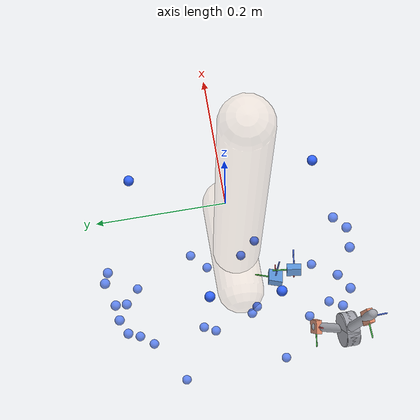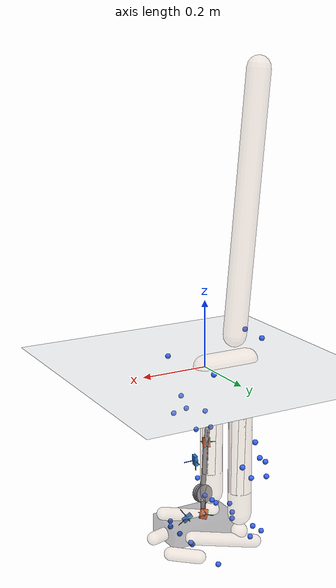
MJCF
<mujoco model="AB15">
  <compiler angle="radian" autolimits="true"/>
  <option timestep="0.005" gravity="0 0 -9.81"><flag contact="disable"/></option>
  <visual><global offwidth="1600" offheight="1200"/>
    <headlight ambient="0.55 0.55 0.55" diffuse="0.6 0.6 0.6"/></visual>
  <default><joint limited="false" damping="0"/><geom contype="0" conaffinity="0"/></default>
  <asset>
    <texture name="grid" type="2d" builtin="checker" rgb1="0.75 0.77 0.8" rgb2="0.85 0.87 0.9" width="512" height="512"/>
    <material name="grid" texture="grid" texrepeat="2 2" texuniform="true"/>
    <material name="skin" rgba="0.85 0.72 0.62 0.28"/>
  </asset>
  <worldbody>
    <light pos="0 0 4" dir="0 0 -1"/>
    <geom name="floor" type="plane" size="0 0 0.05" material="grid"/>
    <body name="pelvis" pos="0 0 0" quat="1 0 0 0">
      <joint name="pelvis_tx" type="slide" axis="1 0 0"/>
      <joint name="pelvis_ty" type="slide" axis="0 0 1"/>
      <joint name="pelvis_tz" type="slide" axis="0 -1 0"/>
      <joint name="pelvis_tilt" type="hinge" axis="0 -1 0"/>
      <joint name="pelvis_list" type="hinge" axis="1 0 0"/>
      <joint name="pelvis_rotation" type="hinge" axis="0 0 1"/>
      <inertial pos="-0.070405409 0 0" mass="15.1838" diaginertia="0.15183756 0.15183756 0.15183756"/>
      <geom type="capsule" fromto="0 0 0 -0.14081082 0 0" size="0.035" material="skin" mass="0"/>
      <site name="m_R_ASIS" pos="0.045681783 -0.14368094 -0.00050951685" size="0.008" rgba="0.2 0.4 1 1" group="2"/>
      <site name="m_L_ASIS" pos="0.051939939 0.14032776 0.02622468" size="0.008" rgba="0.2 0.4 1 1" group="2"/>
      <site name="m_L_PSIS" pos="-0.16270933 0.050413967 0.075718955" size="0.008" rgba="0.2 0.4 1 1" group="2"/>
      <site name="m_R_PSIS" pos="-0.17168138 -0.056377954 0.074213581" size="0.008" rgba="0.2 0.4 1 1" group="2"/>
      <body name="femur_r" pos="-0.070405409 -0.083152074 -0.065824576" quat="1 0 0 0">
        <joint name="hip_flexion_r" type="hinge" axis="0 -1 0"/>
        <joint name="hip_adduction_r" type="hinge" axis="1 0 0"/>
        <joint name="hip_rotation_r" type="hinge" axis="0 0 1"/>
        <inertial pos="0 0 -0.15482401" mass="11.992" diaginertia="0.11992034 0.11992034 0.11992034"/>
        <geom type="capsule" fromto="0 0 0 0 0 -0.30964801" size="0.035" material="skin" mass="0"/>
        <site name="m_R_Thigh_Upper" pos="0.045856362 -0.10865841 -0.088879065" size="0.008" rgba="0.2 0.4 1 1" group="2"/>
        <site name="m_R_Thigh_Front" pos="0.079731243 -0.094871997 -0.13562143" size="0.008" rgba="0.2 0.4 1 1" group="2"/>
        <site name="m_R_Thigh_Rear" pos="0.025570245 -0.11221768 -0.13552686" size="0.008" rgba="0.2 0.4 1 1" group="2"/>
        <site name="m_R_Knee_Lat" pos="0.001817986 -0.08337012 -0.36623417" size="0.008" rgba="0.2 0.4 1 1" group="2"/>
        <site name="m_R_Knee_Med" pos="0.011138818 0.048097652 -0.39595541" size="0.008" rgba="0.2 0.4 1 1" group="2"/>
        <body name="tibia_r" pos="0 0 0" quat="1 0 0 0">
<geom name="gt_shank_axis_x" type="capsule" size="0.0012" fromto="0.04220 -0.02730 -0.27550 0.03969 -0.02742 -0.31041" rgba="1 0.1 0.1 1" contype="0" conaffinity="0" mass="0"/>
<geom name="gt_shank_axis_y" type="capsule" size="0.0012" fromto="0.04220 -0.02730 -0.27550 0.04743 0.00730 -0.27599" rgba="0.1 0.8 0.1 1" contype="0" conaffinity="0" mass="0"/>
<geom name="gt_shank_axis_z" type="capsule" size="0.0012" fromto="0.04220 -0.02730 -0.27550 0.07672 -0.03255 -0.27797" rgba="0.1 0.3 1 1" contype="0" conaffinity="0" mass="0"/>
<geom name="exo_shank_axis_x" type="capsule" size="0.0012" fromto="-0.05920 -0.13379 -0.27451 -0.06338 -0.14305 -0.24102" rgba="1 0.1 0.1 1" contype="0" conaffinity="0" mass="0"/>
<geom name="exo_shank_axis_y" type="capsule" size="0.0012" fromto="-0.05920 -0.13379 -0.27451 -0.09382 -0.13568 -0.27935" rgba="0.1 0.8 0.1 1" contype="0" conaffinity="0" mass="0"/>
<geom name="exo_shank_axis_z" type="capsule" size="0.0012" fromto="-0.05920 -0.13379 -0.27451 -0.05612 -0.16749 -0.28345" rgba="0.1 0.3 1 1" contype="0" conaffinity="0" mass="0"/>
<geom name="encoder_shank" type="cylinder" size="0.03 0.012" fromto="-0.03236 -0.12546 -0.44203 -0.03484 -0.10194 -0.43797" rgba="0.55 0.55 0.58 1" contype="0" conaffinity="0" mass="0"/>
<geom name="strut_shank" type="capsule" size="0.008" fromto="-0.03360 -0.11370 -0.44000 -0.06560 -0.13881 -0.23314" rgba="0.55 0.55 0.58 1" contype="0" conaffinity="0" mass="0"/>
          <joint name="knee_r_translation1" type="slide" axis="1 0 0"/>
          <joint name="knee_r_translation2" type="slide" axis="0 0 1"/>
          <joint name="knee_angle_r" type="hinge" axis="0 -1 0"/>
          <inertial pos="0 0 -0.19105773" mass="4.77998" diaginertia="0.047799757 0.047799757 0.047799757"/>
          <geom type="capsule" fromto="0 0 0 0 0 -0.38211546" size="0.035" material="skin" mass="0"/>
          <site name="m_R_Shank_Upper" pos="-0.037257783 -0.10269807 -0.15302491" size="0.008" rgba="0.2 0.4 1 1" group="2"/>
          <site name="m_R_Shank_Front" pos="0.0018492339 -0.091024596 -0.20349314" size="0.008" rgba="0.2 0.4 1 1" group="2"/>
          <site name="m_R_Shank_Rear" pos="-0.050458984 -0.090268938 -0.20559178" size="0.008" rgba="0.2 0.4 1 1" group="2"/>
          <site name="m_R_Ankle_Lat" pos="-0.0056238593 -0.049797174 -0.41507894" size="0.008" rgba="0.2 0.4 1 1" group="2"/>
          <site name="m_R_Ankle_Med" pos="0.019411138 0.038144566 -0.388534" size="0.008" rgba="0.2 0.4 1 1" group="2"/>
          <site name="gt_shank_imu" type="box" size="0.016 0.012 0.005" pos="0.0422 -0.0273 -0.2755" quat="0.67940685 0.050024138 0.72989439 -0.056196962" rgba="0.16 0.47 0.84 1" group="1"/>
          <site name="exo_shank_imu" type="box" size="0.016 0.012 0.005" pos="-0.059204 -0.133791 -0.274511" quat="-0.37795144 -0.54539789 0.57460608 -0.47908424" rgba="0.92 0.41 0.20 1" group="1"/>
          <body name="talus_r" pos="0 0 -0.44003655" quat="1 0 0 0">
            <joint name="ankle_angle_r" type="hinge" axis="-0.10501355 -0.97912632 -0.17402245"/>
            <inertial pos="0 0 0" mass="0.128927" diaginertia="0.0012892719 0.0012892719 0.0012892719"/>
            <geom type="sphere" size="0.025" material="skin" mass="0"/>
            <body name="calcn_r" pos="-0.049908331 -0.0081048592 -0.042929147" quat="1 0 0 0">
<geom name="gt_foot_axis_x" type="capsule" size="0.0012" fromto="0.13230 0.00240 0.03100 0.16022 -0.00259 0.01049" rgba="1 0.1 0.1 1" contype="0" conaffinity="0" mass="0"/>
<geom name="gt_foot_axis_y" type="capsule" size="0.0012" fromto="0.13230 0.00240 0.03100 0.14205 0.03561 0.03619" rgba="0.1 0.8 0.1 1" contype="0" conaffinity="0" mass="0"/>
<geom name="gt_foot_axis_z" type="capsule" size="0.0012" fromto="0.13230 0.00240 0.03100 0.15102 -0.00745 0.05888" rgba="0.1 0.3 1 1" contype="0" conaffinity="0" mass="0"/>
<geom name="exo_foot_axis_x" type="capsule" size="0.0012" fromto="0.04121 -0.05484 -0.00253 0.02857 -0.06333 0.02898" rgba="1 0.1 0.1 1" contype="0" conaffinity="0" mass="0"/>
<geom name="exo_foot_axis_y" type="capsule" size="0.0012" fromto="0.04121 -0.05484 -0.00253 0.00858 -0.05052 -0.01445" rgba="0.1 0.8 0.1 1" contype="0" conaffinity="0" mass="0"/>
<geom name="exo_foot_axis_z" type="capsule" size="0.0012" fromto="0.04121 -0.05484 -0.00253 0.04020 -0.08852 -0.01201" rgba="0.1 0.3 1 1" contype="0" conaffinity="0" mass="0"/>
<geom name="encoder_foot" type="cylinder" size="0.03 0.012" fromto="0.01658 -0.11722 0.04032 0.01602 -0.09378 0.04548" rgba="0.55 0.55 0.58 1" contype="0" conaffinity="0" mass="0"/>
<geom name="strut_foot" type="capsule" size="0.008" fromto="0.01630 -0.10550 0.04290 0.04121 -0.05484 -0.00253" rgba="0.55 0.55 0.58 1" contype="0" conaffinity="0" mass="0"/>
<geom name="shoe" type="box" pos="0.10268 0.00153 0.00487" size="0.11233 0.07079 0.03000" rgba="0.15 0.15 0.18 0.35" contype="0" conaffinity="0" mass="0"/>
              <joint name="subtalar_angle_r" type="hinge" axis="0.78717961 0.12094949 0.60474746"/>
              <inertial pos="0.10789253 0 0.03236776" mass="1.61159" diaginertia="0.016115899 0.016115899 0.016115899"/>
              <geom type="capsule" fromto="0 0 0 0.21578507 0 0.06473552" size="0.02" material="skin" mass="0"/>
              <site name="m_R_Heel" pos="-0.016653397 0.009611224 0.046861817" size="0.008" rgba="0.2 0.4 1 1" group="2"/>
              <site name="m_R_Toe_Lat" pos="0.15536012 -0.067342732 -0.0051330229" size="0.008" rgba="0.2 0.4 1 1" group="2"/>
              <site name="m_R_Toe_Med" pos="0.18728566 0.054244086 0.013622734" size="0.008" rgba="0.2 0.4 1 1" group="2"/>
              <site name="m_R_Toe_Tip" pos="0.20501413 0.027168693 0.029890763" size="0.008" rgba="0.2 0.4 1 1" group="2"/>
              <site name="gt_foot_imu" type="box" size="0.016 0.012 0.005" pos="0.1323 0.0024 0.031" quat="0.94115337 0.11414416 0.29779664 -0.11188657" rgba="0.16 0.47 0.84 1" group="1"/>
              <site name="exo_foot_imu" type="box" size="0.016 0.012 0.005" pos="0.041208 -0.054844 -0.002535" quat="-0.35071101 -0.44331547 0.6624444 -0.49156952" rgba="0.92 0.41 0.20 1" group="1"/>
              <body name="toes_r" pos="0.19291185 -0.0011652394 -0.0021578507" quat="1 0 0 0">
                <joint name="mtp_angle_r" type="hinge" axis="-0.5809544 -0.81393611 0"/>
                <inertial pos="0.037330817 0.018881193 0.006473552" mass="0.279256" diaginertia="0.002792563 0.002792563 0.002792563"/>
                <geom type="capsule" fromto="0 0 0 0.074661634 0.037762387 0.012947104" size="0.02" material="skin" mass="0"/>
              </body>
            </body>
          </body>
        </body>
      </body>
      <body name="femur_l" pos="-0.070405409 0.083152074 -0.065824576" quat="1 0 0 0">
        <joint name="hip_flexion_l" type="hinge" axis="0 -1 0"/>
        <joint name="hip_adduction_l" type="hinge" axis="-1 0 0"/>
        <joint name="hip_rotation_l" type="hinge" axis="0 0 -1"/>
        <inertial pos="0 0 -0.15482401" mass="11.992" diaginertia="0.11992034 0.11992034 0.11992034"/>
        <geom type="capsule" fromto="0 0 0 0 0 -0.30964801" size="0.035" material="skin" mass="0"/>
        <site name="m_L_Thigh_Upper" pos="0.024212465 0.11989867 -0.10703703" size="0.008" rgba="0.2 0.4 1 1" group="2"/>
        <site name="m_L_Thigh_Front" pos="0.061437092 0.11362916 -0.1781451" size="0.008" rgba="0.2 0.4 1 1" group="2"/>
        <site name="m_L_Thigh_Rear" pos="0.0011785803 0.10927111 -0.16355171" size="0.008" rgba="0.2 0.4 1 1" group="2"/>
        <site name="m_L_Knee_Lat" pos="0.0017369514 0.077998067 -0.38998471" size="0.008" rgba="0.2 0.4 1 1" group="2"/>
        <site name="m_L_Knee_Med" pos="-0.0071238484 -0.051767436 -0.40324329" size="0.008" rgba="0.2 0.4 1 1" group="2"/>
        <body name="tibia_l" pos="0 0 0" quat="1 0 0 0">
          <joint name="knee_l_translation1" type="slide" axis="1 0 0"/>
          <joint name="knee_l_translation2" type="slide" axis="0 0 1"/>
          <joint name="knee_angle_l" type="hinge" axis="0 -1 0"/>
          <inertial pos="0 0 -0.19105773" mass="4.77998" diaginertia="0.047799757 0.047799757 0.047799757"/>
          <geom type="capsule" fromto="0 0 0 0 0 -0.38211546" size="0.035" material="skin" mass="0"/>
          <site name="m_L_Shank_Upper" pos="-0.019750705 0.10695539 -0.18047781" size="0.008" rgba="0.2 0.4 1 1" group="2"/>
          <site name="m_L_Shank_Front" pos="0.01789284 0.091680077 -0.22888527" size="0.008" rgba="0.2 0.4 1 1" group="2"/>
          <site name="m_L_Shank_Rear" pos="-0.030655567 0.096705916 -0.23271745" size="0.008" rgba="0.2 0.4 1 1" group="2"/>
          <site name="m_L_Ankle_Lat" pos="-0.0039316296 0.056219871 -0.43556599" size="0.008" rgba="0.2 0.4 1 1" group="2"/>
          <site name="m_L_Ankle_Med" pos="0.0049709892 -0.032995007 -0.412979" size="0.008" rgba="0.2 0.4 1 1" group="2"/>
          <body name="talus_l" pos="0 0 -0.44003655" quat="1 0 0 0">
            <joint name="ankle_angle_l" type="hinge" axis="0.10501355 -0.97912632 0.17402245"/>
            <inertial pos="0 0 0" mass="0.128927" diaginertia="0.0012892719 0.0012892719 0.0012892719"/>
            <geom type="sphere" size="0.025" material="skin" mass="0"/>
            <body name="calcn_l" pos="-0.049908331 0.0081048592 -0.042929147" quat="1 0 0 0">
              <joint name="subtalar_angle_l" type="hinge" axis="-0.78717961 0.12094949 -0.60474746"/>
              <inertial pos="0.10789253 0 0.03236776" mass="1.61159" diaginertia="0.016115899 0.016115899 0.016115899"/>
              <geom type="capsule" fromto="0 0 0 0.21578507 0 0.06473552" size="0.02" material="skin" mass="0"/>
              <site name="m_L_Heel" pos="-0.021984784 0.002661055 0.029003824" size="0.008" rgba="0.2 0.4 1 1" group="2"/>
              <site name="m_L_Toe_Lat" pos="0.16307094 0.061116194 -0.0055682555" size="0.008" rgba="0.2 0.4 1 1" group="2"/>
              <site name="m_L_Toe_Med" pos="0.17832258 -0.066066006 0.0037515547" size="0.008" rgba="0.2 0.4 1 1" group="2"/>
              <site name="m_L_Toe_Tip" pos="0.19795374 -0.040260221 0.026708081" size="0.008" rgba="0.2 0.4 1 1" group="2"/>
              <body name="toes_l" pos="0.19291185 0.0011652394 -0.0021578507" quat="1 0 0 0">
                <joint name="mtp_angle_l" type="hinge" axis="0.5809544 -0.81393611 0"/>
                <inertial pos="0.037330817 -0.018881193 0.006473552" mass="0.279256" diaginertia="0.002792563 0.002792563 0.002792563"/>
                <geom type="capsule" fromto="0 0 0 0.074661634 -0.037762387 0.012947104" size="0.02" material="skin" mass="0"/>
              </body>
            </body>
          </body>
        </body>
      </body>
      <body name="torso" pos="-0.10028041 0 0.081160407" quat="1 0 0 0">
        <joint name="lumbar_extension" type="hinge" axis="0 -1 0"/>
        <joint name="lumbar_bending" type="hinge" axis="1 0 0"/>
        <joint name="lumbar_rotation" type="hinge" axis="0 0 1"/>
        <inertial pos="-0.035771642 0 0.38156418" mass="44.1403" diaginertia="0.44140287 0.44140287 0.44140287"/>
        <geom type="capsule" fromto="0 0 0 -0.071543284 0 0.76312836" size="0.035" material="skin" mass="0"/>
      </body>
    </body>
  </worldbody>
  <sensor>
<accelerometer name="gt_foot_imu_acc" site="gt_foot_imu"/>
<gyro name="gt_foot_imu_gyr" site="gt_foot_imu"/>
<accelerometer name="exo_foot_imu_acc" site="exo_foot_imu"/>
<gyro name="exo_foot_imu_gyr" site="exo_foot_imu"/>
<accelerometer name="gt_shank_imu_acc" site="gt_shank_imu"/>
<gyro name="gt_shank_imu_gyr" site="gt_shank_imu"/>
<accelerometer name="exo_shank_imu_acc" site="exo_shank_imu"/>
<gyro name="exo_shank_imu_gyr" site="exo_shank_imu"/>
</sensor>
</mujoco>
